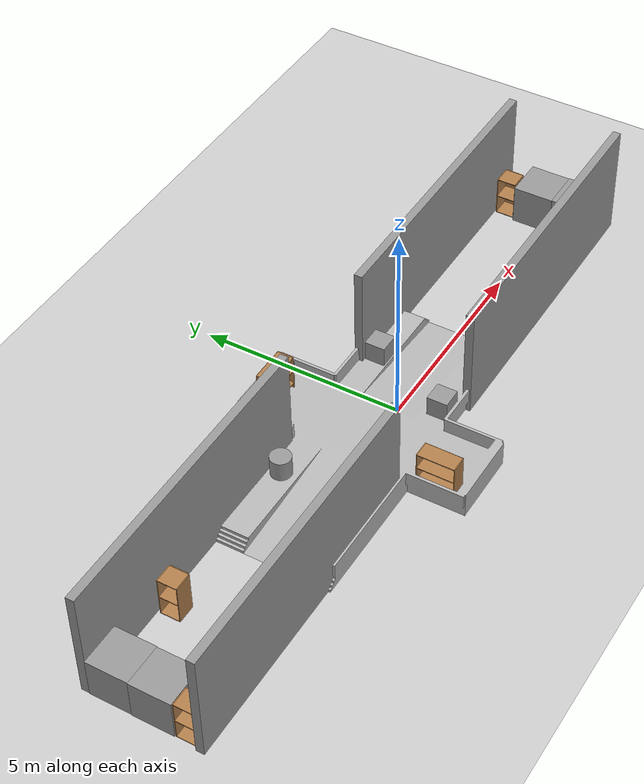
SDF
<sdf version="1.6">
 <world name="default">
  <light name="sun" type="directional">
   <pose>0 0 10 0 -0 0</pose>
   <diffuse>0.8 0.8 0.8 1</diffuse>
   <specular>0.2 0.2 0.2 1</specular>
   <attenuation>
    <range>1000</range>
    <constant>0.9</constant>
    <linear>0.01</linear>
    <quadratic>0.001</quadratic>
   </attenuation>
   <direction>-0.5 0.1 -0.9</direction>
  </light>
  <model name="ground_plane">
   <static>1</static>
   <link name="link">
    <collision name="collision">
     <geometry><plane><normal>0 0 1</normal><size>100 100</size></plane></geometry>
     <surface>
      <contact><collide_bitmask>65535</collide_bitmask></contact>
      <friction><ode><mu>100</mu><mu2>50</mu2></ode></friction>
     </surface>
    </collision>
    <visual name="visual">
     <cast_shadows>0</cast_shadows>
     <geometry><plane><normal>0 0 1</normal><size>100 100</size></plane></geometry>
     <material>
      <script><uri>file://media/materials/scripts/gazebo.material</uri><name>Gazebo/Grey</name></script>
     </material>
    </visual>
   </link>
  </model>
  <gravity>0 0 -9.8</gravity>
  <magnetic_field>6e-06 2.3e-05 -4.2e-05</magnetic_field>
  <atmosphere type="adiabatic"/>
  <physics name="default_physics" default="0" type="ode">
   <max_step_size>0.001</max_step_size>
   <real_time_factor>1</real_time_factor>
   <real_time_update_rate>1000</real_time_update_rate>
  </physics>
  <scene><ambient>0.4 0.4 0.4 1</ambient><background>0.7 0.7 0.7 1</background><shadows>1</shadows></scene>
  <audio><device>default</device></audio>
  <spherical_coordinates>
   <surface_model>EARTH_WGS84</surface_model>
   <latitude_deg>0</latitude_deg>
   <longitude_deg>0</longitude_deg>
   <elevation>0</elevation>
   <heading_deg>0</heading_deg>
  </spherical_coordinates>
  <model name="environment">
   <static>1</static>
   <link name="base">
    <visual name="visual">
     <geometry>
      <mesh><uri>model://environment/meshes/environment.stl</uri><scale>0.7 0.7 0.7</scale></mesh>
     </geometry>
    </visual>
    <collision name="environment_collision">
     <geometry>
      <mesh><uri>model://environment/meshes/environment.stl</uri><scale>0.7 0.7 0.7</scale></mesh>
     </geometry>
     <surface><friction><ode><mu>1</mu><mu2>1</mu2></ode></friction></surface>
    </collision>
   </link>
   <pose>-4.82138 1.43368 -1.04972 1.57 -0 0</pose>
  </model>
  <model name="grey_wall">
   <static>1</static>
   <link name="link">
    <pose>0 0 1.4 0 -0 0</pose>
    <collision name="collision"><geometry><box><size>7.5 0.2 2.8</size></box></geometry></collision>
    <visual name="visual">
     <cast_shadows>0</cast_shadows>
     <geometry><box><size>7.5 0.2 2.8</size></box></geometry>
     <material>
      <script>
       <uri>model://grey_wall/materials/scripts</uri>
       <uri>model://grey_wall/materials/textures</uri>
       <name>vrc/grey_wall</name>
      </script>
     </material>
    </visual>
   </link>
   <pose>-6.02299 -1.21493 0 0 -0 0</pose>
  </model>
  <model name="grey_wall_clone">
   <static>1</static>
   <link name="link">
    <pose>0 0 1.4 0 -0 0</pose>
    <collision name="collision"><geometry><box><size>7.5 0.2 2.8</size></box></geometry></collision>
    <visual name="visual">
     <cast_shadows>0</cast_shadows>
     <geometry><box><size>7.5 0.2 2.8</size></box></geometry>
     <material>
      <script>
       <uri>model://grey_wall/materials/scripts</uri>
       <uri>model://grey_wall/materials/textures</uri>
       <name>vrc/grey_wall</name>
      </script>
     </material>
    </visual>
   </link>
   <pose>4.54708 -1.30354 0 0 -0 0</pose>
  </model>
  <model name="grey_wall_clone_0">
   <static>1</static>
   <link name="link">
    <pose>0 0 1.4 0 -0 0</pose>
    <collision name="collision"><geometry><box><size>7.5 0.2 2.8</size></box></geometry></collision>
    <visual name="visual">
     <cast_shadows>0</cast_shadows>
     <geometry><box><size>7.5 0.2 2.8</size></box></geometry>
     <material>
      <script>
       <uri>model://grey_wall/materials/scripts</uri>
       <uri>model://grey_wall/materials/textures</uri>
       <name>vrc/grey_wall</name>
      </script>
     </material>
    </visual>
   </link>
   <pose>-5.9334 1.50674 0 0 -0 0</pose>
  </model>
  <model name="grey_wall_clone_1">
   <static>1</static>
   <link name="link">
    <pose>0 0 1.4 0 -0 0</pose>
    <collision name="collision"><geometry><box><size>7.5 0.2 2.8</size></box></geometry></collision>
    <visual name="visual">
     <cast_shadows>0</cast_shadows>
     <geometry><box><size>7.5 0.2 2.8</size></box></geometry>
     <material>
      <script>
       <uri>model://grey_wall/materials/scripts</uri>
       <uri>model://grey_wall/materials/textures</uri>
       <name>vrc/grey_wall</name>
      </script>
     </material>
    </visual>
   </link>
   <pose>4.5048 1.43807 0 0 -0 0</pose>
  </model>
  <model name="cabinet">
   <static>1</static>
   <link name="cabinet_bottom_plate">
    <inertial>
     <pose>0 0 -1 0 -0 0</pose>
     <inertia><ixx>2.05</ixx><ixy>0</ixy><ixz>0</ixz><iyy>2.05</iyy><iyz>0</iyz><izz>2.05</izz></inertia>
     <mass>25</mass>
    </inertial>
    <collision name="cabinet_bottom_plate_geom">
     <pose>0 0 0.01 0 -0 0</pose>
     <geometry><box><size>0.45 0.45 0.02</size></box></geometry>
    </collision>
    <visual name="cabinet_bottom_plate_geom_visual">
     <pose>0 0 0.01 0 -0 0</pose>
     <geometry><box><size>0.45 0.45 0.02</size></box></geometry>
     <material>
      <script><uri>file://media/materials/scripts/gazebo.material</uri><name>Gazebo/Wood</name></script>
     </material>
    </visual>
    <collision name="cabinet_bottom_plate_geom_cabinet_back_plate">
     <pose>0.235 0 0.51 0 -0 0</pose>
     <geometry><box><size>0.02 0.45 1.02</size></box></geometry>
    </collision>
    <visual name="cabinet_bottom_plate_geom_cabinet_back_plate_visual">
     <pose>0.235 0 0.51 0 -0 0</pose>
     <geometry><box><size>0.02 0.45 1.02</size></box></geometry>
     <material>
      <script><uri>file://media/materials/scripts/gazebo.material</uri><name>Gazebo/Wood</name></script>
     </material>
    </visual>
    <collision name="cabinet_bottom_plate_geom_cabinet_left_plate">
     <pose>0 0.235 0.51 0 -0 0</pose>
     <geometry><box><size>0.45 0.02 1.02</size></box></geometry>
    </collision>
    <visual name="cabinet_bottom_plate_geom_cabinet_left_plate_visual">
     <pose>0 0.235 0.51 0 -0 0</pose>
     <geometry><box><size>0.45 0.02 1.02</size></box></geometry>
     <material>
      <script><uri>file://media/materials/scripts/gazebo.material</uri><name>Gazebo/Wood</name></script>
     </material>
    </visual>
    <collision name="cabinet_bottom_plate_geom_cabinet_middle_plate">
     <pose>0 0 0.51 0 -0 0</pose>
     <geometry><box><size>0.45 0.45 0.02</size></box></geometry>
    </collision>
    <visual name="cabinet_bottom_plate_geom_cabinet_middle_plate_visual">
     <pose>0 0 0.51 0 -0 0</pose>
     <geometry><box><size>0.45 0.45 0.02</size></box></geometry>
     <material>
      <script><uri>file://media/materials/scripts/gazebo.material</uri><name>Gazebo/Wood</name></script>
     </material>
    </visual>
    <collision name="cabinet_bottom_plate_geom_cabinet_right_plate">
     <pose>0 -0.235 0.51 0 -0 0</pose>
     <geometry><box><size>0.45 0.02 1.02</size></box></geometry>
    </collision>
    <visual name="cabinet_bottom_plate_geom_cabinet_right_plate_visual">
     <pose>0 -0.235 0.51 0 -0 0</pose>
     <geometry><box><size>0.45 0.02 1.02</size></box></geometry>
     <material>
      <script><uri>file://media/materials/scripts/gazebo.material</uri><name>Gazebo/Wood</name></script>
     </material>
    </visual>
    <collision name="cabinet_bottom_plate_geom_cabinet_top_plate">
     <pose>0 0 1.01 0 -0 0</pose>
     <geometry><box><size>0.45 0.45 0.02</size></box></geometry>
    </collision>
    <visual name="cabinet_bottom_plate_geom_cabinet_top_plate_visual">
     <pose>0 0 1.01 0 -0 0</pose>
     <geometry><box><size>0.45 0.45 0.02</size></box></geometry>
     <material>
      <script><uri>file://media/materials/scripts/gazebo.material</uri><name>Gazebo/Wood</name></script>
     </material>
    </visual>
   </link>
   <pose>-7.14539 1.1017 0 0 -0 0</pose>
  </model>
  <model name="cabinet_clone">
   <static>1</static>
   <link name="cabinet_bottom_plate">
    <inertial>
     <pose>0 0 -1 0 -0 0</pose>
     <inertia><ixx>2.05</ixx><ixy>0</ixy><ixz>0</ixz><iyy>2.05</iyy><iyz>0</iyz><izz>2.05</izz></inertia>
     <mass>25</mass>
    </inertial>
    <collision name="cabinet_bottom_plate_geom">
     <pose>0 0 0.01 0 -0 0</pose>
     <geometry><box><size>0.45 0.45 0.02</size></box></geometry>
    </collision>
    <visual name="cabinet_bottom_plate_geom_visual">
     <pose>0 0 0.01 0 -0 0</pose>
     <geometry><box><size>0.45 0.45 0.02</size></box></geometry>
     <material>
      <script><uri>file://media/materials/scripts/gazebo.material</uri><name>Gazebo/Wood</name></script>
     </material>
    </visual>
    <collision name="cabinet_bottom_plate_geom_cabinet_back_plate">
     <pose>0.235 0 0.51 0 -0 0</pose>
     <geometry><box><size>0.02 0.45 1.02</size></box></geometry>
    </collision>
    <visual name="cabinet_bottom_plate_geom_cabinet_back_plate_visual">
     <pose>0.235 0 0.51 0 -0 0</pose>
     <geometry><box><size>0.02 0.45 1.02</size></box></geometry>
     <material>
      <script><uri>file://media/materials/scripts/gazebo.material</uri><name>Gazebo/Wood</name></script>
     </material>
    </visual>
    <collision name="cabinet_bottom_plate_geom_cabinet_left_plate">
     <pose>0 0.235 0.51 0 -0 0</pose>
     <geometry><box><size>0.45 0.02 1.02</size></box></geometry>
    </collision>
    <visual name="cabinet_bottom_plate_geom_cabinet_left_plate_visual">
     <pose>0 0.235 0.51 0 -0 0</pose>
     <geometry><box><size>0.45 0.02 1.02</size></box></geometry>
     <material>
      <script><uri>file://media/materials/scripts/gazebo.material</uri><name>Gazebo/Wood</name></script>
     </material>
    </visual>
    <collision name="cabinet_bottom_plate_geom_cabinet_middle_plate">
     <pose>0 0 0.51 0 -0 0</pose>
     <geometry><box><size>0.45 0.45 0.02</size></box></geometry>
    </collision>
    <visual name="cabinet_bottom_plate_geom_cabinet_middle_plate_visual">
     <pose>0 0 0.51 0 -0 0</pose>
     <geometry><box><size>0.45 0.45 0.02</size></box></geometry>
     <material>
      <script><uri>file://media/materials/scripts/gazebo.material</uri><name>Gazebo/Wood</name></script>
     </material>
    </visual>
    <collision name="cabinet_bottom_plate_geom_cabinet_right_plate">
     <pose>0 -0.235 0.51 0 -0 0</pose>
     <geometry><box><size>0.45 0.02 1.02</size></box></geometry>
    </collision>
    <visual name="cabinet_bottom_plate_geom_cabinet_right_plate_visual">
     <pose>0 -0.235 0.51 0 -0 0</pose>
     <geometry><box><size>0.45 0.02 1.02</size></box></geometry>
     <material>
      <script><uri>file://media/materials/scripts/gazebo.material</uri><name>Gazebo/Wood</name></script>
     </material>
    </visual>
    <collision name="cabinet_bottom_plate_geom_cabinet_top_plate">
     <pose>0 0 1.01 0 -0 0</pose>
     <geometry><box><size>0.45 0.45 0.02</size></box></geometry>
    </collision>
    <visual name="cabinet_bottom_plate_geom_cabinet_top_plate_visual">
     <pose>0 0 1.01 0 -0 0</pose>
     <geometry><box><size>0.45 0.45 0.02</size></box></geometry>
     <material>
      <script><uri>file://media/materials/scripts/gazebo.material</uri><name>Gazebo/Wood</name></script>
     </material>
    </visual>
   </link>
   <pose>-9.46889 -0.857381 0 0 -0 0</pose>
  </model>
  <model name="cabinet_clone_0">
   <static>1</static>
   <link name="cabinet_bottom_plate">
    <inertial>
     <pose>0 0 -1 0 -0 0</pose>
     <inertia><ixx>2.05</ixx><ixy>0</ixy><ixz>0</ixz><iyy>2.05</iyy><iyz>0</iyz><izz>2.05</izz></inertia>
     <mass>25</mass>
    </inertial>
    <collision name="cabinet_bottom_plate_geom">
     <pose>0 0 0.01 0 -0 0</pose>
     <geometry><box><size>0.45 0.45 0.02</size></box></geometry>
    </collision>
    <visual name="cabinet_bottom_plate_geom_visual">
     <pose>0 0 0.01 0 -0 0</pose>
     <geometry><box><size>0.45 0.45 0.02</size></box></geometry>
     <material>
      <script><uri>file://media/materials/scripts/gazebo.material</uri><name>Gazebo/Wood</name></script>
     </material>
    </visual>
    <collision name="cabinet_bottom_plate_geom_cabinet_back_plate">
     <pose>0.235 0 0.51 0 -0 0</pose>
     <geometry><box><size>0.02 0.45 1.02</size></box></geometry>
    </collision>
    <visual name="cabinet_bottom_plate_geom_cabinet_back_plate_visual">
     <pose>0.235 0 0.51 0 -0 0</pose>
     <geometry><box><size>0.02 0.45 1.02</size></box></geometry>
     <material>
      <script><uri>file://media/materials/scripts/gazebo.material</uri><name>Gazebo/Wood</name></script>
     </material>
    </visual>
    <collision name="cabinet_bottom_plate_geom_cabinet_left_plate">
     <pose>0 0.235 0.51 0 -0 0</pose>
     <geometry><box><size>0.45 0.02 1.02</size></box></geometry>
    </collision>
    <visual name="cabinet_bottom_plate_geom_cabinet_left_plate_visual">
     <pose>0 0.235 0.51 0 -0 0</pose>
     <geometry><box><size>0.45 0.02 1.02</size></box></geometry>
     <material>
      <script><uri>file://media/materials/scripts/gazebo.material</uri><name>Gazebo/Wood</name></script>
     </material>
    </visual>
    <collision name="cabinet_bottom_plate_geom_cabinet_middle_plate">
     <pose>0 0 0.51 0 -0 0</pose>
     <geometry><box><size>0.45 0.45 0.02</size></box></geometry>
    </collision>
    <visual name="cabinet_bottom_plate_geom_cabinet_middle_plate_visual">
     <pose>0 0 0.51 0 -0 0</pose>
     <geometry><box><size>0.45 0.45 0.02</size></box></geometry>
     <material>
      <script><uri>file://media/materials/scripts/gazebo.material</uri><name>Gazebo/Wood</name></script>
     </material>
    </visual>
    <collision name="cabinet_bottom_plate_geom_cabinet_right_plate">
     <pose>0 -0.235 0.51 0 -0 0</pose>
     <geometry><box><size>0.45 0.02 1.02</size></box></geometry>
    </collision>
    <visual name="cabinet_bottom_plate_geom_cabinet_right_plate_visual">
     <pose>0 -0.235 0.51 0 -0 0</pose>
     <geometry><box><size>0.45 0.02 1.02</size></box></geometry>
     <material>
      <script><uri>file://media/materials/scripts/gazebo.material</uri><name>Gazebo/Wood</name></script>
     </material>
    </visual>
    <collision name="cabinet_bottom_plate_geom_cabinet_top_plate">
     <pose>0 0 1.01 0 -0 0</pose>
     <geometry><box><size>0.45 0.45 0.02</size></box></geometry>
    </collision>
    <visual name="cabinet_bottom_plate_geom_cabinet_top_plate_visual">
     <pose>0 0 1.01 0 -0 0</pose>
     <geometry><box><size>0.45 0.45 0.02</size></box></geometry>
     <material>
      <script><uri>file://media/materials/scripts/gazebo.material</uri><name>Gazebo/Wood</name></script>
     </material>
    </visual>
   </link>
   <pose>7.57072 1.06272 0 0 -0 0</pose>
  </model>
  <model name="cabinet_clone_1">
   <static>1</static>
   <link name="cabinet_bottom_plate">
    <inertial>
     <pose>0 0 -1 0 -0 0</pose>
     <inertia><ixx>2.05</ixx><ixy>0</ixy><ixz>0</ixz><iyy>2.05</iyy><iyz>0</iyz><izz>2.05</izz></inertia>
     <mass>25</mass>
    </inertial>
    <collision name="cabinet_bottom_plate_geom">
     <pose>0 0 0.01 0 -0 0</pose>
     <geometry><box><size>0.45 0.45 0.02</size></box></geometry>
    </collision>
    <visual name="cabinet_bottom_plate_geom_visual">
     <pose>0 0 0.01 0 -0 0</pose>
     <geometry><box><size>0.45 0.45 0.02</size></box></geometry>
     <material>
      <script><uri>file://media/materials/scripts/gazebo.material</uri><name>Gazebo/Wood</name></script>
     </material>
    </visual>
    <collision name="cabinet_bottom_plate_geom_cabinet_back_plate">
     <pose>0.235 0 0.51 0 -0 0</pose>
     <geometry><box><size>0.02 0.45 1.02</size></box></geometry>
    </collision>
    <visual name="cabinet_bottom_plate_geom_cabinet_back_plate_visual">
     <pose>0.235 0 0.51 0 -0 0</pose>
     <geometry><box><size>0.02 0.45 1.02</size></box></geometry>
     <material>
      <script><uri>file://media/materials/scripts/gazebo.material</uri><name>Gazebo/Wood</name></script>
     </material>
    </visual>
    <collision name="cabinet_bottom_plate_geom_cabinet_left_plate">
     <pose>0 0.235 0.51 0 -0 0</pose>
     <geometry><box><size>0.45 0.02 1.02</size></box></geometry>
    </collision>
    <visual name="cabinet_bottom_plate_geom_cabinet_left_plate_visual">
     <pose>0 0.235 0.51 0 -0 0</pose>
     <geometry><box><size>0.45 0.02 1.02</size></box></geometry>
     <material>
      <script><uri>file://media/materials/scripts/gazebo.material</uri><name>Gazebo/Wood</name></script>
     </material>
    </visual>
    <collision name="cabinet_bottom_plate_geom_cabinet_middle_plate">
     <pose>0 0 0.51 0 -0 0</pose>
     <geometry><box><size>0.45 0.45 0.02</size></box></geometry>
    </collision>
    <visual name="cabinet_bottom_plate_geom_cabinet_middle_plate_visual">
     <pose>0 0 0.51 0 -0 0</pose>
     <geometry><box><size>0.45 0.45 0.02</size></box></geometry>
     <material>
      <script><uri>file://media/materials/scripts/gazebo.material</uri><name>Gazebo/Wood</name></script>
     </material>
    </visual>
    <collision name="cabinet_bottom_plate_geom_cabinet_right_plate">
     <pose>0 -0.235 0.51 0 -0 0</pose>
     <geometry><box><size>0.45 0.02 1.02</size></box></geometry>
    </collision>
    <visual name="cabinet_bottom_plate_geom_cabinet_right_plate_visual">
     <pose>0 -0.235 0.51 0 -0 0</pose>
     <geometry><box><size>0.45 0.02 1.02</size></box></geometry>
     <material>
      <script><uri>file://media/materials/scripts/gazebo.material</uri><name>Gazebo/Wood</name></script>
     </material>
    </visual>
    <collision name="cabinet_bottom_plate_geom_cabinet_top_plate">
     <pose>0 0 1.01 0 -0 0</pose>
     <geometry><box><size>0.45 0.45 0.02</size></box></geometry>
    </collision>
    <visual name="cabinet_bottom_plate_geom_cabinet_top_plate_visual">
     <pose>0 0 1.01 0 -0 0</pose>
     <geometry><box><size>0.45 0.45 0.02</size></box></geometry>
     <material>
      <script><uri>file://media/materials/scripts/gazebo.material</uri><name>Gazebo/Wood</name></script>
     </material>
    </visual>
   </link>
   <pose>5.39046 -1.02622 0 0 -0 0</pose>
  </model>
  <model name="bookshelf">
   <static>1</static>
   <link name="link">
    <inertial><mass>1</mass></inertial>
    <collision name="back">
     <pose>0 0.005 0.6 0 -0 0</pose>
     <geometry><box><size>0.9 0.01 1.2</size></box></geometry>
    </collision>
    <visual name="visual1">
     <pose>0 0.005 0.6 0 -0 0</pose>
     <geometry><box><size>0.9 0.01 1.2</size></box></geometry>
     <material>
      <script><uri>file://media/materials/scripts/gazebo.material</uri><name>Gazebo/Wood</name></script>
     </material>
    </visual>
    <collision name="left_side">
     <pose>0.45 -0.195 0.6 0 -0 0</pose>
     <geometry><box><size>0.02 0.4 1.2</size></box></geometry>
    </collision>
    <visual name="visual2">
     <pose>0.45 -0.195 0.6 0 -0 0</pose>
     <geometry><box><size>0.02 0.4 1.2</size></box></geometry>
     <material>
      <script><uri>file://media/materials/scripts/gazebo.material</uri><name>Gazebo/Wood</name></script>
     </material>
    </visual>
    <collision name="right_side">
     <pose>-0.45 -0.195 0.6 0 -0 0</pose>
     <geometry><box><size>0.02 0.4 1.2</size></box></geometry>
    </collision>
    <visual name="visual3">
     <pose>-0.45 -0.195 0.6 0 -0 0</pose>
     <geometry><box><size>0.02 0.4 1.2</size></box></geometry>
     <material>
      <script><uri>file://media/materials/scripts/gazebo.material</uri><name>Gazebo/Wood</name></script>
     </material>
    </visual>
    <collision name="bottom">
     <pose>0 -0.195 0.03 0 -0 0</pose>
     <geometry><box><size>0.88 0.4 0.06</size></box></geometry>
    </collision>
    <visual name="visual4">
     <pose>0 -0.195 0.03 0 -0 0</pose>
     <geometry><box><size>0.88 0.4 0.06</size></box></geometry>
     <material>
      <script><uri>file://media/materials/scripts/gazebo.material</uri><name>Gazebo/Wood</name></script>
     </material>
    </visual>
    <collision name="top">
     <pose>0 -0.195 1.19 0 -0 0</pose>
     <geometry><box><size>0.88 0.4 0.02</size></box></geometry>
    </collision>
    <visual name="visual5">
     <pose>0 -0.195 1.19 0 -0 0</pose>
     <geometry><box><size>0.88 0.4 0.02</size></box></geometry>
     <material>
      <script><uri>file://media/materials/scripts/gazebo.material</uri><name>Gazebo/Wood</name></script>
     </material>
    </visual>
    <collision name="low_shelf">
     <pose>0 -0.195 0.43 0 -0 0</pose>
     <geometry><box><size>0.88 0.4 0.02</size></box></geometry>
    </collision>
    <visual name="visual6">
     <pose>0 -0.195 0.43 0 -0 0</pose>
     <geometry><box><size>0.88 0.4 0.02</size></box></geometry>
     <material>
      <script><uri>file://media/materials/scripts/gazebo.material</uri><name>Gazebo/Wood</name></script>
     </material>
    </visual>
    <collision name="high_shelf">
     <pose>0 -0.195 0.8 0 -0 0</pose>
     <geometry><box><size>0.88 0.4 0.02</size></box></geometry>
    </collision>
    <visual name="visual7">
     <pose>0 -0.195 0.8 0 -0 0</pose>
     <geometry><box><size>0.88 0.4 0.02</size></box></geometry>
     <material>
      <script><uri>file://media/materials/scripts/gazebo.material</uri><name>Gazebo/Wood</name></script>
     </material>
    </visual>
   </link>
   <pose>-1.18565 2.63133 0 0 -0 0</pose>
  </model>
  <model name="bookshelf_0">
   <static>1</static>
   <link name="link">
    <inertial><mass>1</mass></inertial>
    <collision name="back">
     <pose>0 0.005 0.6 0 -0 0</pose>
     <geometry><box><size>0.9 0.01 1.2</size></box></geometry>
    </collision>
    <visual name="visual1">
     <pose>0 0.005 0.6 0 -0 0</pose>
     <geometry><box><size>0.9 0.01 1.2</size></box></geometry>
     <material>
      <script><uri>file://media/materials/scripts/gazebo.material</uri><name>Gazebo/Wood</name></script>
     </material>
    </visual>
    <collision name="left_side">
     <pose>0.45 -0.195 0.6 0 -0 0</pose>
     <geometry><box><size>0.02 0.4 1.2</size></box></geometry>
    </collision>
    <visual name="visual2">
     <pose>0.45 -0.195 0.6 0 -0 0</pose>
     <geometry><box><size>0.02 0.4 1.2</size></box></geometry>
     <material>
      <script><uri>file://media/materials/scripts/gazebo.material</uri><name>Gazebo/Wood</name></script>
     </material>
    </visual>
    <collision name="right_side">
     <pose>-0.45 -0.195 0.6 0 -0 0</pose>
     <geometry><box><size>0.02 0.4 1.2</size></box></geometry>
    </collision>
    <visual name="visual3">
     <pose>-0.45 -0.195 0.6 0 -0 0</pose>
     <geometry><box><size>0.02 0.4 1.2</size></box></geometry>
     <material>
      <script><uri>file://media/materials/scripts/gazebo.material</uri><name>Gazebo/Wood</name></script>
     </material>
    </visual>
    <collision name="bottom">
     <pose>0 -0.195 0.03 0 -0 0</pose>
     <geometry><box><size>0.88 0.4 0.06</size></box></geometry>
    </collision>
    <visual name="visual4">
     <pose>0 -0.195 0.03 0 -0 0</pose>
     <geometry><box><size>0.88 0.4 0.06</size></box></geometry>
     <material>
      <script><uri>file://media/materials/scripts/gazebo.material</uri><name>Gazebo/Wood</name></script>
     </material>
    </visual>
    <collision name="top">
     <pose>0 -0.195 1.19 0 -0 0</pose>
     <geometry><box><size>0.88 0.4 0.02</size></box></geometry>
    </collision>
    <visual name="visual5">
     <pose>0 -0.195 1.19 0 -0 0</pose>
     <geometry><box><size>0.88 0.4 0.02</size></box></geometry>
     <material>
      <script><uri>file://media/materials/scripts/gazebo.material</uri><name>Gazebo/Wood</name></script>
     </material>
    </visual>
    <collision name="low_shelf">
     <pose>0 -0.195 0.43 0 -0 0</pose>
     <geometry><box><size>0.88 0.4 0.02</size></box></geometry>
    </collision>
    <visual name="visual6">
     <pose>0 -0.195 0.43 0 -0 0</pose>
     <geometry><box><size>0.88 0.4 0.02</size></box></geometry>
     <material>
      <script><uri>file://media/materials/scripts/gazebo.material</uri><name>Gazebo/Wood</name></script>
     </material>
    </visual>
    <collision name="high_shelf">
     <pose>0 -0.195 0.8 0 -0 0</pose>
     <geometry><box><size>0.88 0.4 0.02</size></box></geometry>
    </collision>
    <visual name="visual7">
     <pose>0 -0.195 0.8 0 -0 0</pose>
     <geometry><box><size>0.88 0.4 0.02</size></box></geometry>
     <material>
      <script><uri>file://media/materials/scripts/gazebo.material</uri><name>Gazebo/Wood</name></script>
     </material>
    </visual>
   </link>
   <pose>-1.58042 -2.0015 0 0 0 -1.57058</pose>
  </model>
  <model name="unit_box">
   <pose>0.251835 -0.97643 0.5322 -0.000796 -0 -2.3e-05</pose>
   <link name="link">
    <inertial>
     <mass>1</mass>
     <inertia>
      <ixx>0.166667</ixx>
      <ixy>0</ixy>
      <ixz>0</ixz>
      <iyy>0.166667</iyy>
      <iyz>0</iyz>
      <izz>0.166667</izz>
     </inertia>
    </inertial>
    <collision name="collision"><geometry><box><size>0.5 0.5 0.5</size></box></geometry></collision>
    <visual name="visual">
     <geometry><box><size>0.5 0.5 0.5</size></box></geometry>
     <material>
      <script><name>Gazebo/Grey</name><uri>file://media/materials/scripts/gazebo.material</uri></script>
     </material>
    </visual>
   </link>
  </model>
  <model name="unit_box_0">
   <pose>1.11024 1.08792 0.530602 -0.000612 -0 1e-06</pose>
   <link name="link">
    <inertial>
     <mass>1</mass>
     <inertia>
      <ixx>0.166667</ixx>
      <ixy>0</ixy>
      <ixz>0</ixz>
      <iyy>0.166667</iyy>
      <iyz>0</iyz>
      <izz>0.166667</izz>
     </inertia>
    </inertial>
    <collision name="collision"><geometry><box><size>0.5 0.5 0.5</size></box></geometry></collision>
    <visual name="visual">
     <geometry><box><size>0.5 0.5 0.5</size></box></geometry>
     <material>
      <script><name>Gazebo/Grey</name><uri>file://media/materials/scripts/gazebo.material</uri></script>
     </material>
    </visual>
   </link>
  </model>
  <model name="unit_cylinder">
   <pose>-3.09319 1.12172 0.530529 -0.000796 -0 -1.5e-05</pose>
   <link name="link">
    <inertial>
     <mass>1</mass>
     <inertia><ixx>0.145833</ixx><ixy>0</ixy><ixz>0</ixz><iyy>0.145833</iyy><iyz>0</iyz><izz>0.125</izz></inertia>
    </inertial>
    <collision name="collision">
     <geometry><cylinder><radius>0.25</radius><length>0.5</length></cylinder></geometry>
    </collision>
    <visual name="visual">
     <geometry><cylinder><radius>0.25</radius><length>0.5</length></cylinder></geometry>
     <material>
      <script><name>Gazebo/Grey</name><uri>file://media/materials/scripts/gazebo.material</uri></script>
     </material>
    </visual>
   </link>
  </model>
  <model name="unit_cylinder_0">
   <pose>-3.97011 -0.8647 0.532104 -0.0008 -0 -4.2e-05</pose>
   <link name="link">
    <inertial>
     <mass>1</mass>
     <inertia><ixx>0.145833</ixx><ixy>0</ixy><ixz>0</ixz><iyy>0.145833</iyy><iyz>0</iyz><izz>0.125</izz></inertia>
    </inertial>
    <collision name="collision">
     <geometry><cylinder><radius>0.25</radius><length>0.5</length></cylinder></geometry>
    </collision>
    <visual name="visual">
     <geometry><cylinder><radius>0.25</radius><length>0.5</length></cylinder></geometry>
     <material>
      <script><name>Gazebo/Grey</name><uri>file://media/materials/scripts/gazebo.material</uri></script>
     </material>
    </visual>
   </link>
  </model>
  <model name="unit_box_1">
   <pose>7.78127 -0.702988 0.499995 0 -1e-05 0.000524</pose>
   <link name="link">
    <inertial>
     <mass>1</mass>
     <inertia>
      <ixx>0.166667</ixx>
      <ixy>0</ixy>
      <ixz>0</ixz>
      <iyy>0.166667</iyy>
      <iyz>0</iyz>
      <izz>0.166667</izz>
     </inertia>
    </inertial>
    <collision name="collision"><geometry><box><size>1 1 1</size></box></geometry></collision>
    <visual name="visual">
     <geometry><box><size>1 1 1</size></box></geometry>
     <material>
      <script><name>Gazebo/Grey</name><uri>file://media/materials/scripts/gazebo.material</uri></script>
     </material>
    </visual>
   </link>
  </model>
  <model name="unit_box_3">
   <pose>7.76592 0.297665 0.499995 1e-05 -0 0.000845</pose>
   <link name="link">
    <inertial>
     <mass>1</mass>
     <inertia>
      <ixx>0.166667</ixx>
      <ixy>0</ixy>
      <ixz>0</ixz>
      <iyy>0.166667</iyy>
      <iyz>0</iyz>
      <izz>0.166667</izz>
     </inertia>
    </inertial>
    <collision name="collision"><geometry><box><size>1 1 1</size></box></geometry></collision>
    <visual name="visual">
     <geometry><box><size>1 1 1</size></box></geometry>
     <material>
      <script><name>Gazebo/Grey</name><uri>file://media/materials/scripts/gazebo.material</uri></script>
     </material>
    </visual>
   </link>
  </model>
  <model name="unit_box_2">
   <pose>-9.19735 0.906295 0.499995 -0 -1e-05 0.000884</pose>
   <link name="link">
    <inertial>
     <mass>1</mass>
     <inertia>
      <ixx>0.166667</ixx>
      <ixy>0</ixy>
      <ixz>0</ixz>
      <iyy>0.166667</iyy>
      <iyz>0</iyz>
      <izz>0.166667</izz>
     </inertia>
    </inertial>
    <collision name="collision"><geometry><box><size>1 1 1</size></box></geometry></collision>
    <visual name="visual">
     <geometry><box><size>1 1 1</size></box></geometry>
     <material>
      <script><name>Gazebo/Grey</name><uri>file://media/materials/scripts/gazebo.material</uri></script>
     </material>
    </visual>
   </link>
  </model>
  <model name="unit_box_4">
   <pose>-9.20902 -0.093726 0.499995 0 -1e-05 0.000882</pose>
   <link name="link">
    <inertial>
     <mass>1</mass>
     <inertia>
      <ixx>0.166667</ixx>
      <ixy>0</ixy>
      <ixz>0</ixz>
      <iyy>0.166667</iyy>
      <iyz>0</iyz>
      <izz>0.166667</izz>
     </inertia>
    </inertial>
    <collision name="collision"><geometry><box><size>1 1 1</size></box></geometry></collision>
    <visual name="visual">
     <geometry><box><size>1 1 1</size></box></geometry>
     <material>
      <script><name>Gazebo/Grey</name><uri>file://media/materials/scripts/gazebo.material</uri></script>
     </material>
    </visual>
   </link>
  </model>
 </world>
</sdf>
